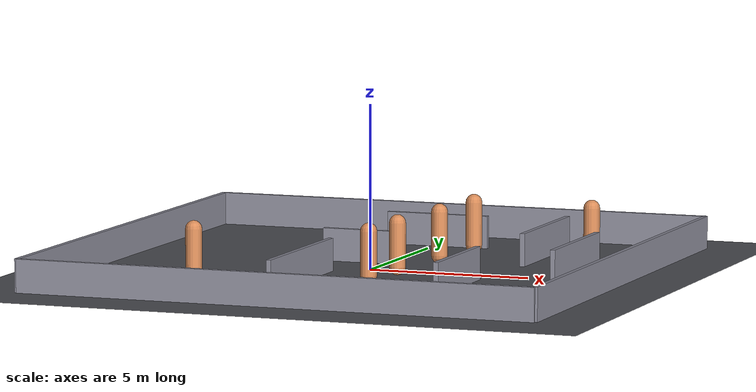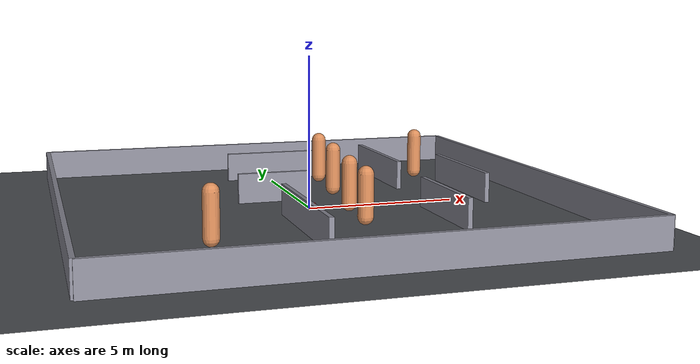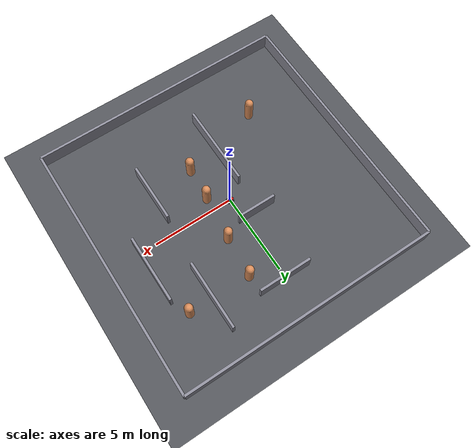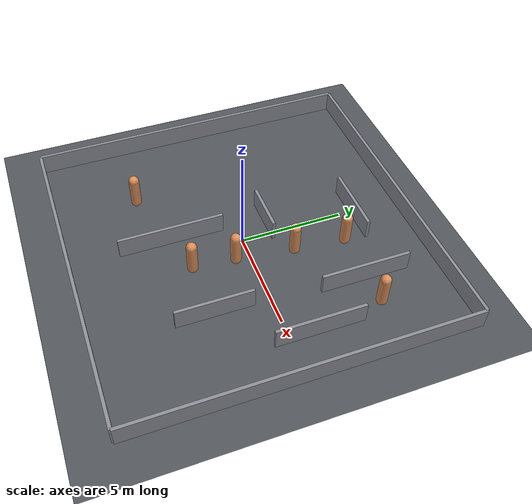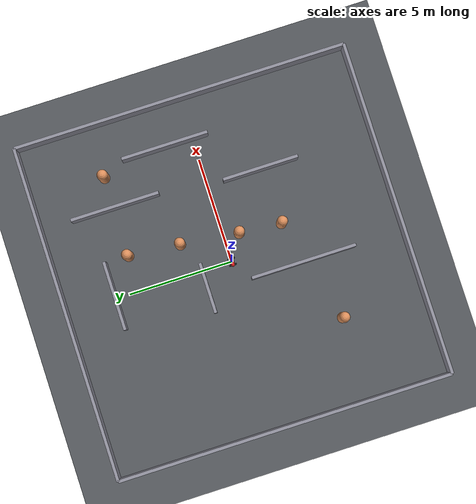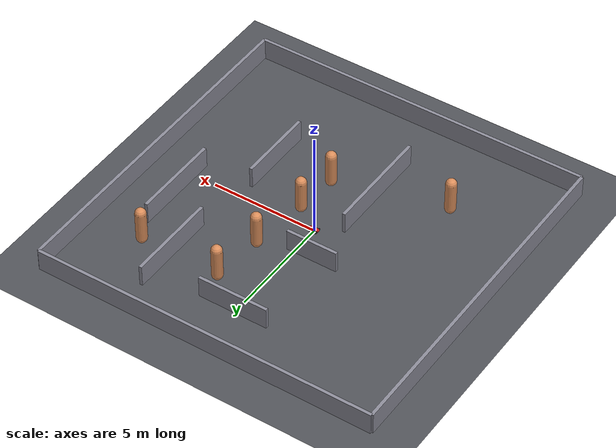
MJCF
<mujoco model="ackermann_car_room">
  <compiler angle="radian"/>
  <option timestep="0.002" gravity="0 0 -9.81" iterations="4" cone="pyramidal"/>

  <default>
    <joint damping="0.05"/>
    <geom friction="2.0 0.1 0.1" contype="1" conaffinity="1"/>
  </default>

  <worldbody>
    <light name="ceiling" pos="0 0 6" dir="0 0 -1" diffuse="0.8 0.8 0.8"/>
    <geom name="floor" type="plane" size="10.0 10.0 0.1" rgba="0.32 0.33 0.35 1"/>
    <geom name="wall_0" type="box" size="8.0000 0.0750 0.5000" pos="0.0000 -8.0000 0.5000" rgba="0.55 0.55 0.60 1"/>
    <geom name="wall_1" type="box" size="8.0000 0.0750 0.5000" pos="0.0000 8.0000 0.5000" rgba="0.55 0.55 0.60 1"/>
    <geom name="wall_2" type="box" size="0.0750 8.0000 0.5000" pos="-8.0000 0.0000 0.5000" rgba="0.55 0.55 0.60 1"/>
    <geom name="wall_3" type="box" size="0.0750 8.0000 0.5000" pos="8.0000 0.0000 0.5000" rgba="0.55 0.55 0.60 1"/>
    <geom name="wall_4" type="box" size="0.0750 2.5159 0.5000" pos="-1.0326 -3.1341 0.5000" rgba="0.55 0.55 0.60 1"/>
    <geom name="wall_5" type="box" size="0.0750 1.8099 0.5000" pos="3.6894 -2.5569 0.5000" rgba="0.55 0.55 0.60 1"/>
    <geom name="wall_6" type="box" size="0.0750 2.1187 0.5000" pos="4.0328 4.3813 0.5000" rgba="0.55 0.55 0.60 1"/>
    <geom name="wall_7" type="box" size="1.2014 0.0750 0.5000" pos="-0.8558 1.4415 0.5000" rgba="0.55 0.55 0.60 1"/>
    <geom name="wall_8" type="box" size="1.6401 0.0750 0.5000" pos="0.1032 5.6268 0.5000" rgba="0.55 0.55 0.60 1"/>
    <geom name="wall_9" type="box" size="0.0750 2.0806 0.5000" pos="6.0299 1.3414 0.5000" rgba="0.55 0.55 0.60 1"/>
    <body name="human_0" mocap="true" pos="1.1390 -0.7151 0.9130">
      <geom name="human_geom_0" type="capsule" size="0.250 0.663" rgba="0.85 0.55 0.35 1"/>
    </body>
    <body name="human_1" mocap="true" pos="0.9835 -2.7257 0.9130">
      <geom name="human_geom_1" type="capsule" size="0.250 0.663" rgba="0.85 0.55 0.35 1"/>
    </body>
    <body name="human_2" mocap="true" pos="-4.0379 -4.0725 0.9130">
      <geom name="human_geom_2" type="capsule" size="0.250 0.663" rgba="0.85 0.55 0.35 1"/>
    </body>
    <body name="human_3" mocap="true" pos="1.4661 2.0366 0.9130">
      <geom name="human_geom_3" type="capsule" size="0.250 0.663" rgba="0.85 0.55 0.35 1"/>
    </body>
    <body name="human_4" mocap="true" pos="5.5040 4.4520 0.9130">
      <geom name="human_geom_4" type="capsule" size="0.250 0.663" rgba="0.85 0.55 0.35 1"/>
    </body>
    <body name="human_5" mocap="true" pos="1.6919 4.4860 0.9130">
      <geom name="human_geom_5" type="capsule" size="0.250 0.663" rgba="0.85 0.55 0.35 1"/>
    </body>

    <body name="chassis" pos="0 0 0.1">
      <freejoint name="chassis_free"/>
      <geom name="chassis_geom" type="capsule" size="0.09" fromto="-0.15 0 0 0.15 0 0" mass="3.0" rgba="0.8 0.1 0.1 1"/>

      <body name="wheel_fl" pos="0.1483 0.115 -0.05">
        <joint name="steer_fl" type="hinge" axis="0 0 1" range="-0.6 0.6" limited="true" damping="1.0"/>
        <geom name="knuckle_fl_geom" type="sphere" size="0.01" mass="0.05" rgba="0.2 0.2 0.2 1"/>
        <body name="wheel_fl_spin">
          <joint name="spin_fl" type="hinge" axis="0 1 0" damping="0.001"/>
          <geom name="wheel_fl_geom" type="capsule" size="0.05" fromto="0 -0.0215 0 0 0.0215 0" mass="0.1" rgba="0.1 0.1 0.1 1"/>
        </body>
      </body>
      <body name="wheel_fr" pos="0.1483 -0.115 -0.05">
        <joint name="steer_fr" type="hinge" axis="0 0 1" range="-0.6 0.6" limited="true" damping="1.0"/>
        <geom name="knuckle_fr_geom" type="sphere" size="0.01" mass="0.05" rgba="0.2 0.2 0.2 1"/>
        <body name="wheel_fr_spin">
          <joint name="spin_fr" type="hinge" axis="0 1 0" damping="0.001"/>
          <geom name="wheel_fr_geom" type="capsule" size="0.05" fromto="0 -0.0215 0 0 0.0215 0" mass="0.1" rgba="0.1 0.1 0.1 1"/>
        </body>
      </body>
      <body name="wheel_rl" pos="-0.1483 0.115 -0.05">
        <joint name="spin_rl" type="hinge" axis="0 1 0" damping="0.001"/>
        <geom name="wheel_rl_geom" type="capsule" size="0.05" fromto="0 -0.0215 0 0 0.0215 0" mass="0.1" rgba="0.1 0.1 0.1 1"/>
      </body>
      <body name="wheel_rr" pos="-0.1483 -0.115 -0.05">
        <joint name="spin_rr" type="hinge" axis="0 1 0" damping="0.001"/>
        <geom name="wheel_rr_geom" type="capsule" size="0.05" fromto="0 -0.0215 0 0 0.0215 0" mass="0.1" rgba="0.1 0.1 0.1 1"/>
      </body>
    </body>
  </worldbody>

  <equality>
    <joint joint1="steer_fl" joint2="steer_fr"/>
  </equality>

  <actuator>
    <position name="steer" joint="steer_fl" kp="80" ctrlrange="-0.6 0.6" forcerange="-20 20"/>
    <motor name="throttle_rl" joint="spin_rl" gear="0.78" ctrlrange="-1 1"/>
    <motor name="throttle_rr" joint="spin_rr" gear="0.78" ctrlrange="-1 1"/>
  </actuator>
</mujoco>
